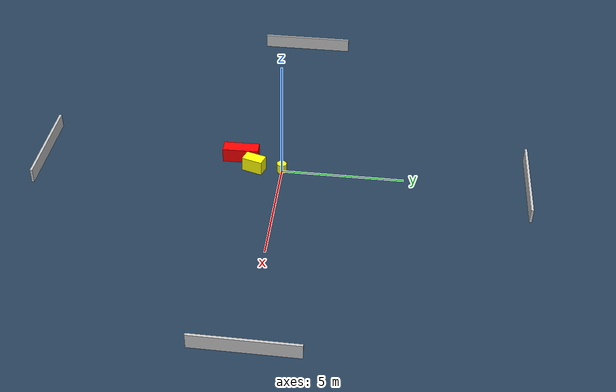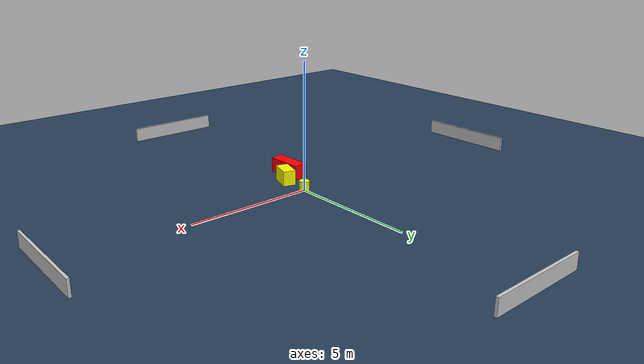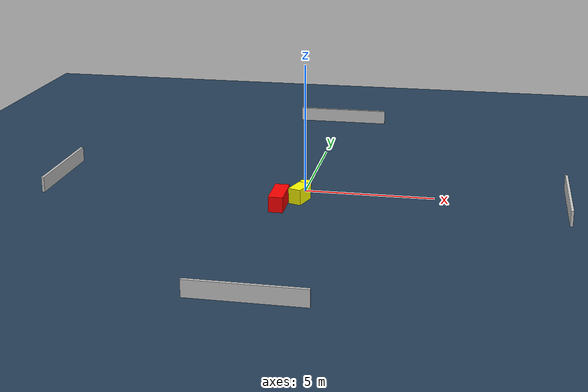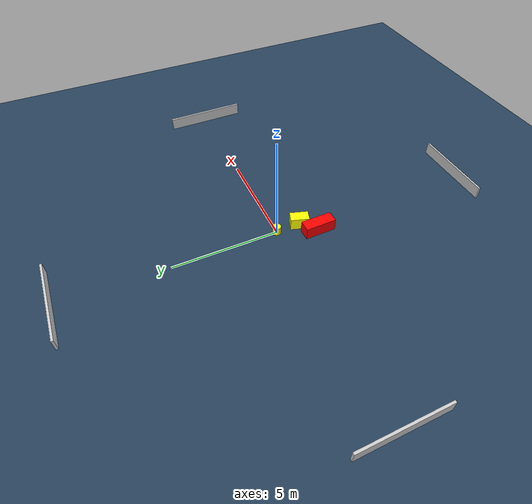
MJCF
<?xml version="1.0" ?>
<mujoco model="generated_environment">
  <option timestep="0.01" integrator="RK4" cone="elliptic"/>
  <default>
    <geom density="1"/>
  </default>
  <asset>
    <texture builtin="gradient" height="3072" name="skybox" rgb1="0.3 0.5 0.7" rgb2="0 0 0" type="skybox" width="512"/>
    <texture builtin="checker" height="300" name="groundplane" rgb1="0.2 0.3 0.4" rgb2="0.1 0.2 0.3" type="2d" width="300"/>
    <material name="groundplane" reflectance="0.2" texrepeat="5 5" texture="groundplane"/>
  </asset>
  <worldbody>
    <light dir="0 0 -1" directional="true" pos="0 0 1.5"/>
    <geom condim="3" friction="0.5 0.005 0.001" material="groundplane" name="floor" pos="0 0 0" size="0 0 0.05" type="plane"/>
    <body name="walls">
      <geom name="wall_1" condim="4" pos="-10.0 0.0 0.3" rgba="0.800000011920929 0.800000011920929 0.800000011920929 1.0" size="0.05 2.0 0.3" type="box"/>
      <geom name="wall_2" condim="4" pos="10.0 0.0 0.3" rgba="0.800000011920929 0.800000011920929 0.800000011920929 1.0" size="0.05 2.0 0.3" type="box"/>
      <geom name="wall_3" condim="4" pos="0.0 -10.0 0.3" rgba="0.800000011920929 0.800000011920929 0.800000011920929 1.0" size="2.0 0.05 0.3" type="box"/>
      <geom name="wall_4" condim="4" pos="0.0 10.0 0.3" rgba="0.800000011920929 0.800000011920929 0.800000011920929 1.0" size="2.0 0.05 0.3" type="box"/>
    </body>
    <body name="robot">
      <joint name="joint_x" type="slide" pos="0 0 0" axis="1 0 0"/>
      <joint name="joint_y" type="slide" pos="0 0 0" axis="0 1 0"/>
      <geom name="robot" type="cylinder" pos="0.0 0.0 0.2" size="0.2 0.2 0.0" mass="5.0" friction="1.0 0.005 0.0001" condim="4" rgba="1.0 1.0 0.0 1.0"/>
    </body>
    <body name="obstacle_1_movable">
      <geom name="obstacle_1_movable" condim="4" pos="-0.006820448904341354 -1.152447435232715 0.3" euler="0 0 162.56783124628367" friction="0.0 0.005 0.001" rgba="1.0 1.0 0.0 1.0" size="0.2522467126459966 0.43268017608357756 0.3" type="box" mass="0.1"/>
      <joint type="free"/>
    </body>
    <body name="obstacle_2_static">
      <geom name="obstacle_2_static" condim="4" pos="-0.668890681165772 -1.8023049321735711 0.3" euler="0 0 1.0459988429517608" friction="0.0 0.005 0.001" rgba="1.0 0.0 0.0 1.0" size="0.27629046870244645 0.7392652322574493 0.3" type="box"/>
    </body>
  </worldbody>
  <actuator>
    <motor name="actuator_x" joint="joint_x" gear="1" ctrlrange="-1 1"/>
    <motor name="actuator_y" joint="joint_y" gear="1" ctrlrange="-1 1"/>
  </actuator>
</mujoco>
